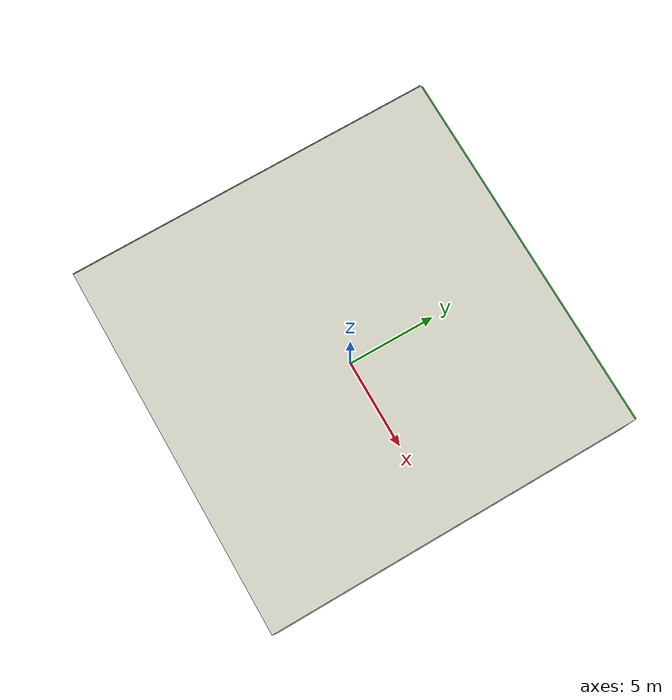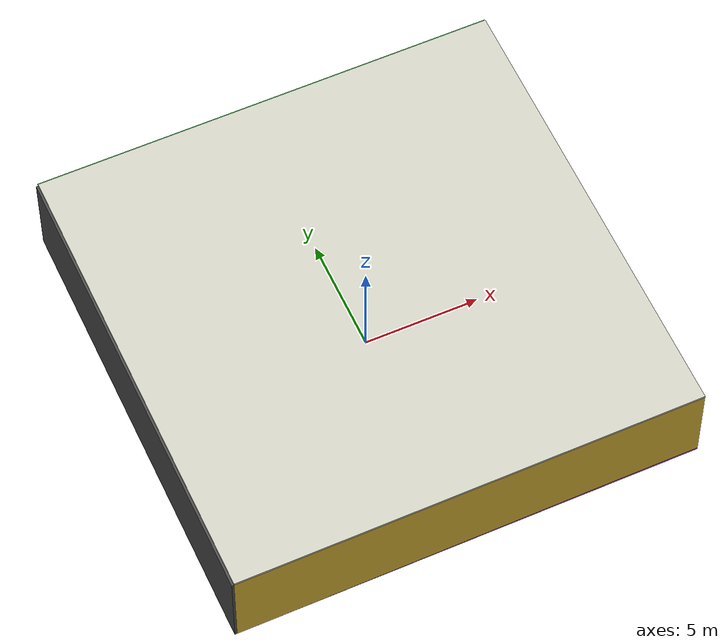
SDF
<sdf version="1.4">
 <world name="default">
  <physics type="ode">
   <max_step_size>0.001</max_step_size>
   <real_time_factor>1</real_time_factor>
   <real_time_update_rate>1000</real_time_update_rate>
   <gravity>0 0 -9.8</gravity>
  </physics>
  <scene><ambient>0.4 0.4 0.4 1</ambient><background>0.7 0.7 0.7 1</background><shadows>1</shadows></scene>
  <model name="Surrounding">
   <static>1</static>
   <link name="Ceiling">
    <collision name="Ceiling_Collision"><geometry><box><size>20 20 0.1</size></box></geometry></collision>
    <visual name="Ceiling_Visual">
     <geometry><box><size>20 20 0.1</size></box></geometry>
     <material>
      <script><uri>file://media/materials/scripts/gazebo.material</uri><name>Gazebo/PaintedWall</name></script>
     </material>
    </visual>
    <pose>0 0 4.05 0 0 0</pose>
   </link>
   <link name="Wall_South">
    <collision name="Wall_South_Collision">
     <geometry><box><size>20 0 4</size></box></geometry>
     <pose>0 0 2 0 -0 0</pose>
    </collision>
    <visual name="Wall_South_Visual">
     <pose>0 0 2 0 -0 0</pose>
     <geometry><box><size>20 0 4</size></box></geometry>
     <material>
      <script><uri>file://media/materials/scripts/gazebo.material</uri><name>Gazebo/Gold</name></script>
     </material>
    </visual>
    <velocity_decay><linear>0</linear><angular>0</angular></velocity_decay>
    <pose>0 -10 0 0 -0 0</pose>
   </link>
   <link name="Wall_East">
    <collision name="Wall_21_Collision">
     <geometry><box><size>20 0 4</size></box></geometry>
     <pose>0 0 2 0 -0 0</pose>
    </collision>
    <visual name="Wall_21_Visual">
     <pose>0 0 2 0 -0 0</pose>
     <geometry><box><size>20 0 4</size></box></geometry>
     <material>
      <script><uri>file://media/materials/scripts/gazebo.material</uri><name>Gazebo/PaintedWall</name></script>
     </material>
    </visual>
    <velocity_decay><linear>0</linear><angular>0</angular></velocity_decay>
    <pose>10 0 0 0 -0 1.5708</pose>
   </link>
   <link name="Wall_North">
    <collision name="Wall_22_Collision">
     <geometry><box><size>20 0.2 4</size></box></geometry>
     <pose>0 0 2 0 -0 0</pose>
    </collision>
    <visual name="Wall_22_Visual">
     <pose>0 0 2 0 -0 0</pose>
     <geometry><box><size>20 0.2 4</size></box></geometry>
     <material>
      <script><uri>file://media/materials/scripts/gazebo.material</uri><name>Gazebo/GreenGlow</name></script>
     </material>
    </visual>
    <velocity_decay><linear>0</linear><angular>0</angular></velocity_decay>
    <pose>0 10 0 0 -0 0</pose>
   </link>
   <link name="Wall_West">
    <collision name="Wall_23_Collision">
     <geometry><box><size>20 0.2 4</size></box></geometry>
     <pose>0 0 2 0 -0 0</pose>
    </collision>
    <visual name="Wall_23_Visual">
     <pose>0 0 2 0 -0 0</pose>
     <geometry><box><size>20 0.2 4</size></box></geometry>
     <material>
      <script><uri>file://media/materials/scripts/gazebo.material</uri><name>Gazebo/DarkGrey</name></script>
     </material>
    </visual>
    <velocity_decay><linear>0</linear><angular>0</angular></velocity_decay>
    <pose>-10 0 0 0 0 -1.5708</pose>
   </link>
   <link name="Ground_link">
    <collision name="collision">
     <pose>0 0 .05 0 -0 0</pose>
     <geometry><box><size>20 20 0.1</size></box></geometry>
    </collision>
    <visual name="visual">
     <pose>0 0 .05 0 -0 0</pose>
     <geometry><box><size>20 20 0.1</size></box></geometry>
     <material>
      <script><uri>file://media/materials/scripts/gazebo.material</uri><name>Gazebo/PurpleGlow</name></script>
     </material>
    </visual>
   </link>
   <static>1</static>
  </model>
  <spherical_coordinates>
   <surface_model>EARTH_WGS84</surface_model>
   <latitude_deg>0</latitude_deg>
   <longitude_deg>0</longitude_deg>
   <elevation>0</elevation>
   <heading_deg>0</heading_deg>
  </spherical_coordinates>
  <light name="lightball_0" type="diffuse">
   <diffuse>0.8 0.8 0.8 1</diffuse>
   <specular>0.2 0.2 0.2 1</specular>
   <attenuation>
    <range>100</range>
    <constant>0.7</constant>
    <linear>0.01</linear>
    <quadratic>0.001</quadratic>
   </attenuation>
   <direction>-0.5 0.1 -0.9</direction>
   <pose>0.357837489816 -2.11642434003 2.67494219847 0 0 0</pose>
  </light>
  <light name="lightball_1" type="diffuse">
   <diffuse>0.8 0.8 0.8 1</diffuse>
   <specular>0.2 0.2 0.2 1</specular>
   <attenuation>
    <range>100</range>
    <constant>0.7</constant>
    <linear>0.01</linear>
    <quadratic>0.001</quadratic>
   </attenuation>
   <direction>-0.5 0.1 -0.9</direction>
   <pose>8.31617219232 6.36122391131 0.578859901867 0 0 0</pose>
  </light>
  <light name="lightball_2" type="diffuse">
   <diffuse>0.8 0.8 0.8 1</diffuse>
   <specular>0.2 0.2 0.2 1</specular>
   <attenuation>
    <range>100</range>
    <constant>0.7</constant>
    <linear>0.01</linear>
    <quadratic>0.001</quadratic>
   </attenuation>
   <direction>-0.5 0.1 -0.9</direction>
   <pose>-0.710095080713 7.48584828983 3.32867471292 0 0 0</pose>
  </light>
  <light name="lightball_3" type="diffuse">
   <diffuse>0.8 0.8 0.8 1</diffuse>
   <specular>0.2 0.2 0.2 1</specular>
   <attenuation>
    <range>100</range>
    <constant>0.7</constant>
    <linear>0.01</linear>
    <quadratic>0.001</quadratic>
   </attenuation>
   <direction>-0.5 0.1 -0.9</direction>
   <pose>1.14833340929 -6.95696201819 3.0425506698 0 0 0</pose>
  </light>
  <light name="lightball_4" type="diffuse">
   <diffuse>0.8 0.8 0.8 1</diffuse>
   <specular>0.2 0.2 0.2 1</specular>
   <attenuation>
    <range>100</range>
    <constant>0.7</constant>
    <linear>0.01</linear>
    <quadratic>0.001</quadratic>
   </attenuation>
   <direction>-0.5 0.1 -0.9</direction>
   <pose>6.05718578117 -3.40751895614 3.67638386038 0 0 0</pose>
  </light>
  <light name="lightball_5" type="diffuse">
   <diffuse>0.8 0.8 0.8 1</diffuse>
   <specular>0.2 0.2 0.2 1</specular>
   <attenuation>
    <range>100</range>
    <constant>0.7</constant>
    <linear>0.01</linear>
    <quadratic>0.001</quadratic>
   </attenuation>
   <direction>-0.5 0.1 -0.9</direction>
   <pose>-2.51851436052 -5.26855887114 3.58887719028 0 0 0</pose>
  </light>
  <light name="lightball_6" type="diffuse">
   <diffuse>0.8 0.8 0.8 1</diffuse>
   <specular>0.2 0.2 0.2 1</specular>
   <attenuation>
    <range>100</range>
    <constant>0.7</constant>
    <linear>0.01</linear>
    <quadratic>0.001</quadratic>
   </attenuation>
   <direction>-0.5 0.1 -0.9</direction>
   <pose>-8.13196139724 -6.95451072544 1.88353863517 0 0 0</pose>
  </light>
  <light name="lightball_7" type="diffuse">
   <diffuse>0.8 0.8 0.8 1</diffuse>
   <specular>0.2 0.2 0.2 1</specular>
   <attenuation>
    <range>100</range>
    <constant>0.7</constant>
    <linear>0.01</linear>
    <quadratic>0.001</quadratic>
   </attenuation>
   <direction>-0.5 0.1 -0.9</direction>
   <pose>4.37104552833 8.96252017573 1.63363517528 0 0 0</pose>
  </light>
  <light name="lightball_8" type="diffuse">
   <diffuse>0.8 0.8 0.8 1</diffuse>
   <specular>0.2 0.2 0.2 1</specular>
   <attenuation>
    <range>100</range>
    <constant>0.7</constant>
    <linear>0.01</linear>
    <quadratic>0.001</quadratic>
   </attenuation>
   <direction>-0.5 0.1 -0.9</direction>
   <pose>4.64306891442 -4.19305702584 2.83341622013 0 0 0</pose>
  </light>
  <light name="lightball_9" type="diffuse">
   <diffuse>0.8 0.8 0.8 1</diffuse>
   <specular>0.2 0.2 0.2 1</specular>
   <attenuation>
    <range>100</range>
    <constant>0.7</constant>
    <linear>0.01</linear>
    <quadratic>0.001</quadratic>
   </attenuation>
   <direction>-0.5 0.1 -0.9</direction>
   <pose>4.96903686105 -3.07172721331 1.47178866211 0 0 0</pose>
  </light>
  <light name="lightball_10" type="diffuse">
   <diffuse>0.8 0.8 0.8 1</diffuse>
   <specular>0.2 0.2 0.2 1</specular>
   <attenuation>
    <range>100</range>
    <constant>0.7</constant>
    <linear>0.01</linear>
    <quadratic>0.001</quadratic>
   </attenuation>
   <direction>-0.5 0.1 -0.9</direction>
   <pose>-5.66018681656 -6.7342143355 0.796590662544 0 0 0</pose>
  </light>
  <light name="lightball_11" type="diffuse">
   <diffuse>0.8 0.8 0.8 1</diffuse>
   <specular>0.2 0.2 0.2 1</specular>
   <attenuation>
    <range>100</range>
    <constant>0.7</constant>
    <linear>0.01</linear>
    <quadratic>0.001</quadratic>
   </attenuation>
   <direction>-0.5 0.1 -0.9</direction>
   <pose>-2.94771648944 -6.48518712507 2.72028326242 0 0 0</pose>
  </light>
  <include>
   <uri>model://construction_cone</uri>
   <pose>-7.83393456897 -7.49591299057 0 0 0 1.17611525</pose>
  </include>
  <include><uri>model://table</uri><pose>-8.24565115351 7.0598294162 0 0 0 1.3902895596</pose></include>
  <include>
   <uri>model://robocup_3Dsim_goal</uri>
   <pose>-1.88195091868 7.4583051843 0 0 0 2.49483123925</pose>
  </include>
  <include><uri>model://cabinet</uri><pose>1.53087133627 -1.09087147483 0 0 0 0.922570683559</pose></include>
  <include><uri>model://cabinet</uri><pose>4.12712086868 -1.19891060325 0 0 0 0.0822621081813</pose></include>
  <include><uri>model://cabinet</uri><pose>7.25196924544 -4.8547998933 0 0 0 1.62983298884</pose></include>
 </world>
</sdf>

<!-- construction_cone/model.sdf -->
<sdf version="1.5">
  <model name="Construction Cone">
    <link name="link">
      <collision name="collision">
        <geometry>
          <mesh>
            <scale>10 10 10</scale>
            <uri>file://isr-testbed/construction_cone/meshes/construction_cone.dae</uri>
          </mesh>
        </geometry>
      </collision>
      <visual name="visual">
        <geometry>
          <mesh>
            <scale>10 10 10</scale>
            <uri>file://isr-testbed/construction_cone/meshes/construction_cone.dae</uri>
          </mesh>
        </geometry>
      </visual>
    </link>
  </model>
</sdf>

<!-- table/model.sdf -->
<sdf version="1.5">
  <model name="table">
    <static>true</static>
    <link name="link">
      <collision name="surface">
        <pose>0 0 1.0 0 0 0</pose>
        <geometry>
          <box>
            <size>1.5 0.8 0.03</size>
          </box>
        </geometry>
        <surface>
          <friction>
            <ode>
              <mu>0.6</mu>
              <mu2>0.6</mu2>
            </ode>
          </friction>
        </surface>
      </collision>
      <visual name="visual1">
        <pose>0 0 1.0 0 0 0</pose>
        <geometry>
          <box>
            <size>1.5 0.8 0.03</size>
          </box>
        </geometry>
        <material>
          <script>
            <uri>model://media/materials/scripts/gazebo.material</uri>
            <name>Gazebo/Wood</name>
          </script>
        </material>
      </visual>
      <collision name="front_left_leg">
        <pose>0.68 0.38 0.5 0 0 0</pose>
        <geometry>
          <cylinder>
            <radius>0.02</radius>
            <length>1.0</length>
          </cylinder>
        </geometry>
      </collision>
      <visual name="front_left_leg">
        <pose>0.68 0.38 0.5 0 0 0</pose>
        <geometry>
          <cylinder>
            <radius>0.02</radius>
            <length>1.0</length>
          </cylinder>
        </geometry>
        <material>
          <script>
            <uri>model://media/materials/scripts/gazebo.material</uri>
            <name>Gazebo/Grey</name>
          </script>
        </material>
      </visual>
      <collision name="front_right_leg">
        <pose>0.68 -0.38 0.5 0 0 0</pose>
        <geometry>
          <cylinder>
            <radius>0.02</radius>
            <length>1.0</length>
          </cylinder>
        </geometry>
      </collision>
      <visual name="front_right_leg">
        <pose>0.68 -0.38 0.5 0 0 0</pose>
        <geometry>
          <cylinder>
            <radius>0.02</radius>
            <length>1.0</length>
          </cylinder>
        </geometry>
        <material>
          <script>
            <uri>model://media/materials/scripts/gazebo.material</uri>
            <name>Gazebo/Grey</name>
          </script>
        </material>
      </visual>
      <collision name="back_right_leg">
        <pose>-0.68 -0.38 0.5 0 0 0</pose>
        <geometry>
          <cylinder>
            <radius>0.02</radius>
            <length>1.0</length>
          </cylinder>
        </geometry>
      </collision>
      <visual name="back_right_leg">
        <pose>-0.68 -0.38 0.5 0 0 0</pose>
        <geometry>
          <cylinder>
            <radius>0.02</radius>
            <length>1.0</length>
          </cylinder>
        </geometry>
        <material>
          <script>
            <uri>model://media/materials/scripts/gazebo.material</uri>
            <name>Gazebo/Grey</name>
          </script>
        </material>
      </visual>
      <collision name="back_left_leg">
        <pose>-0.68 0.38 0.5 0 0 0</pose>
        <geometry>
          <cylinder>
            <radius>0.02</radius>
            <length>1.0</length>
          </cylinder>
        </geometry>
      </collision>
      <visual name="back_left_leg">
        <pose>-0.68 0.38 0.5 0 0 0</pose>
        <geometry>
          <cylinder>
            <radius>0.02</radius>
            <length>1.0</length>
          </cylinder>
        </geometry>
        <material>
          <script>
            <uri>model://media/materials/scripts/gazebo.material</uri>
            <name>Gazebo/Grey</name>
          </script>
        </material>
      </visual>
    </link>
  </model>
</sdf>

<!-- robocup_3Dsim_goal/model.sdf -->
<sdf version="1.5">
  <model name="robocup_3d_goal">
    <static>true</static>
    <link name="left_post">
      <pose>0 1.05 0.45 0 0 0</pose>
      <collision name="collision">
        <geometry>
          <cylinder>
            <radius>0.05</radius>
            <length>0.9</length>
          </cylinder>
        </geometry>
      </collision>
      <visual name="visual">
        <geometry>
          <cylinder>
            <radius>0.05</radius>
            <length>0.9</length>
          </cylinder>
        </geometry>
        <material>
          <script>
            <uri>file://media/materials/scripts/gazebo.material</uri>
            <name>Gazebo/ZincYellow</name>
          </script>
        </material>
      </visual>
    </link>
    <link name="left_support_horiz_lower">
      <pose>0.30 1.05 0.01 0 0 0</pose>
      <collision name="collision">
        <geometry>
          <box>
            <size>0.50 0.02 0.02</size>
          </box>
        </geometry>
      </collision>
      <visual name="visual">
        <geometry>
          <box>
            <size>0.50 0.02 0.02</size>
          </box>
        </geometry>
        <material>
          <script>
            <uri>file://media/materials/scripts/gazebo.material</uri>
            <name>Gazebo/White</name>
          </script>
        </material>
      </visual>
    </link>
    <link name="left_support_horiz_upper">
      <pose>0.30 1.05 0.79 0 0 0</pose>
      <collision name="collision">
        <geometry>
          <box>
            <size>0.50 0.02 0.02</size>
          </box>
        </geometry>
      </collision>
      <visual name="visual">
        <geometry>
          <box>
            <size>0.50 0.02 0.02</size>
          </box>
        </geometry>
        <material>
          <script>
            <uri>file://media/materials/scripts/gazebo.material</uri>
            <name>Gazebo/White</name>
          </script>
        </material>
      </visual>
    </link>
    <link name="left_support_vertical">
      <pose>0.56 1.05 0.4 0 1.5708 0</pose>
      <collision name="collision">
        <geometry>
          <box>
            <size>0.80 0.02 0.02</size>
          </box>
        </geometry>
      </collision>
      <visual name="visual">
        <geometry>
          <box>
            <size>0.80 0.02 0.02</size>
          </box>
        </geometry>
        <material>
          <script>
            <uri>file://media/materials/scripts/gazebo.material</uri>
            <name>Gazebo/White</name>
          </script>
        </material>
      </visual>
    </link>
    <link name="right_support_horiz_lower">
      <pose>0.30 -1.05 0.01 0 0 0</pose>
      <collision name="collision">
        <geometry>
          <box>
            <size>0.50 0.02 0.02</size>
          </box>
        </geometry>
      </collision>
      <visual name="visual">
        <geometry>
          <box>
            <size>0.50 0.02 0.02</size>
          </box>
        </geometry>
        <material>
          <script>
            <uri>file://media/materials/scripts/gazebo.material</uri>
            <name>Gazebo/White</name>
          </script>
        </material>
      </visual>
    </link>
    <link name="right_support_horiz_upper">
      <pose>0.30 -1.05 0.79 0 0 0</pose>
      <collision name="collision">
        <geometry>
          <box>
            <size>0.50 0.02 0.02</size>
          </box>
        </geometry>
      </collision>
      <visual name="visual">
        <geometry>
          <box>
            <size>0.50 0.02 0.02</size>
          </box>
        </geometry>
        <material>
          <script>
            <uri>file://media/materials/scripts/gazebo.material</uri>
            <name>Gazebo/White</name>
          </script>
        </material>
      </visual>
    </link>
    <link name="right_support_vertical">
      <pose>0.56 -1.05 0.4 0 1.5708 0</pose>
      <collision name="collision">
        <geometry>
          <box>
            <size>0.80 0.02 0.02</size>
          </box>
        </geometry>
      </collision>
      <visual name="visual">
        <geometry>
          <box>
            <size>0.80 0.02 0.02</size>
          </box>
        </geometry>
        <material>
          <script>
            <uri>file://media/materials/scripts/gazebo.material</uri>
            <name>Gazebo/White</name>
          </script>
        </material>
      </visual>
    </link>
    <link name="center_support_horiz_lower">
      <pose>0.56 0 0.01 0 1.5708 0</pose>
      <collision name="collision">
        <geometry>
          <box>
            <size>0.02 2.08 0.02</size>
          </box>
        </geometry>
      </collision>
      <visual name="visual">
        <geometry>
          <box>
            <size>0.02 2.08 0.02</size>
          </box>
        </geometry>
        <material>
          <script>
            <uri>file://media/materials/scripts/gazebo.material</uri>
            <name>Gazebo/White</name>
          </script>
        </material>
      </visual>
    </link>
    <link name="center_support_horiz_upper">
      <pose>0.56 0 0.79 0 1.5708 0</pose>
      <collision name="collision">
        <geometry>
          <box>
            <size>0.02 2.08 0.02</size>
          </box>
        </geometry>
      </collision>
      <visual name="visual">
        <geometry>
          <box>
            <size>0.02 2.08 0.02</size>
          </box>
        </geometry>
        <material>
          <script>
            <uri>file://media/materials/scripts/gazebo.material</uri>
            <name>Gazebo/White</name>
          </script>
        </material>
      </visual>
    </link>
    <link name="right_post">
      <pose>0 -1.05 0.45 0 0 0</pose>
      <collision name="collision">
        <geometry>
          <cylinder>
            <radius>0.05</radius>
            <length>0.9</length>
          </cylinder>
        </geometry>
      </collision>
      <visual name="visual">
        <geometry>
          <cylinder>
            <radius>0.05</radius>
            <length>0.9</length>
          </cylinder>
        </geometry>
        <material>
          <script>
            <uri>file://media/materials/scripts/gazebo.material</uri>
            <name>Gazebo/ZincYellow</name>
          </script>
        </material>
      </visual>
    </link>
    <link name="crossbar">
      <pose>0 0 0.85 1.57 1.57 0</pose>
      <collision name="collision">
        <geometry>
          <cylinder>
            <radius>0.05</radius>
            <length>2.0</length>
          </cylinder>
        </geometry>
      </collision>
      <visual name="visual">
        <geometry>
          <cylinder>
            <radius>0.05</radius>
            <length>2.0</length>
          </cylinder>
        </geometry>
        <material>
          <script>
            <uri>file://media/materials/scripts/gazebo.material</uri>
            <name>Gazebo/ZincYellow</name>
          </script>
        </material>
      </visual>
    </link>
    <link name="center_net">
      <pose>0.56 0 0.40 0 0 0</pose>
      <collision name="collision">
        <geometry>
          <box>
            <size>0.01 2.1 0.80</size>
          </box>
        </geometry>
      </collision>
      <visual name="visual">
        <geometry>
          <box>
            <size>0.01 2.1 0.80</size>
          </box>
        </geometry>
        <material>
          <script>
            <uri>model://../model_source/models/robocup09_spl_field/materials/scripts/</uri>
            <uri>model://../model_source/models/robocup09_spl_field/materials/textures/</uri>
            <name>RoboCup/Net</name>
          </script>
        </material>
      </visual>
    </link>
    <link name="left_net">
      <pose>0.30 1.05 0.40 0 0 0</pose>
      <collision name="collision">
        <geometry>
          <box>
            <size>0.50 0.01 0.76</size>
          </box>
        </geometry>
      </collision>
      <visual name="visual">
        <geometry>
          <box>
            <size>0.50 0.01 0.76</size>
          </box>
        </geometry>
        <material>
          <script>
            <uri>model://../model_source/models/robocup09_spl_field/materials/scripts/</uri>
            <uri>model://../model_source/models/robocup09_spl_field/materials/textures/</uri>
            <name>RoboCup/Net</name>
          </script>
        </material>
      </visual>
    </link>
    <link name="right_net">
      <pose>0.30 -1.05 0.40 0 0 0</pose>
      <collision name="collision">
        <geometry>
          <box>
            <size>0.50 0.01 0.76</size>
          </box>
        </geometry>
      </collision>
      <visual name="visual">
        <geometry>
          <box>
            <size>0.50 0.01 0.76</size>
          </box>
        </geometry>
        <material>
          <script>
            <uri>model://../model_source/models/robocup09_spl_field/materials/scripts/</uri>
            <uri>model://../model_source/models/robocup09_spl_field/materials/textures/</uri>
            <name>RoboCup/Net</name>
          </script>
        </material>
      </visual>
    </link>
  </model>
</sdf>

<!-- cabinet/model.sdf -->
<sdf version="1.5">
  <model name="cabinet">
    <static>true</static>
    <link name="cabinet_bottom_plate">
      <inertial>
        <pose>0 0 -1 0 0 0</pose>
        <inertia>
          <ixx>2.050000</ixx>
          <ixy>0</ixy>
          <ixz>0</ixz>
          <iyy>2.050000</iyy>
          <iyz>0</iyz>
          <izz>2.050000</izz>
        </inertia>
        <mass>25.000000</mass>
      </inertial>
      <collision name="cabinet_bottom_plate_geom">
        <pose>0 0 0.010000 0 0 0</pose>
        <geometry>
          <box>
            <size>0.450000 0.450000 0.020000</size>
          </box>
        </geometry>
      </collision>
      <visual name="cabinet_bottom_plate_geom_visual">
        <pose>0 0 0.010000 0 0 0</pose>
        <geometry>
          <box>
            <size>0.450000 0.450000 0.020000</size>
          </box>
        </geometry>
        <material>
          <script>
            <uri>model://media/materials/scripts/gazebo.material</uri>
            <name>Gazebo/Wood</name>
          </script>
        </material>
      </visual>
      <collision name="cabinet_bottom_plate_geom_cabinet_back_plate">
        <pose>0.235000 0 0.510000 0 0 0</pose>
        <geometry>
          <box>
            <size>0.020000 0.450000 1.020000</size>
          </box>
        </geometry>
      </collision>
      <visual name="cabinet_bottom_plate_geom_cabinet_back_plate_visual">
        <pose>0.235000 0 0.510000 0 0 0</pose>
        <geometry>
          <box>
            <size>0.020000 0.450000 1.020000</size>
          </box>
        </geometry>
        <material>
          <script>
            <uri>model://media/materials/scripts/gazebo.material</uri>
            <name>Gazebo/Wood</name>
          </script>
        </material>
      </visual>
      <collision name="cabinet_bottom_plate_geom_cabinet_left_plate">
        <pose>0 0.235000 0.510000 0 0 0</pose>
        <geometry>
          <box>
            <size>0.450000 0.020000 1.020000</size>
          </box>
        </geometry>
      </collision>
      <visual name="cabinet_bottom_plate_geom_cabinet_left_plate_visual">
        <pose>0 0.235000 0.510000 0 0 0</pose>
        <geometry>
          <box>
            <size>0.450000 0.020000 1.020000</size>
          </box>
        </geometry>
        <material>
          <script>
            <uri>model://media/materials/scripts/gazebo.material</uri>
            <name>Gazebo/Wood</name>
          </script>
        </material>
      </visual>
      <collision name="cabinet_bottom_plate_geom_cabinet_middle_plate">
        <pose>0 0 0.510000 0 0 0</pose>
        <geometry>
          <box>
            <size>0.450000 0.450000 0.020000</size>
          </box>
        </geometry>
      </collision>
      <visual name="cabinet_bottom_plate_geom_cabinet_middle_plate_visual">
        <pose>0 0 0.510000 0 0 0</pose>
        <geometry>
          <box>
            <size>0.450000 0.450000 0.020000</size>
          </box>
        </geometry>
        <material>
          <script>
            <uri>model://media/materials/scripts/gazebo.material</uri>
            <name>Gazebo/Wood</name>
          </script>
        </material>
      </visual>
      <collision name="cabinet_bottom_plate_geom_cabinet_right_plate">
        <pose>0 -0.235000 0.510000 0 0 0</pose>
        <geometry>
          <box>
            <size>0.450000 0.020000 1.020000</size>
          </box>
        </geometry>
      </collision>
      <visual name="cabinet_bottom_plate_geom_cabinet_right_plate_visual">
        <pose>0 -0.235000 0.510000 0 0 0</pose>
        <geometry>
          <box>
            <size>0.450000 0.020000 1.020000</size>
          </box>
        </geometry>
        <material>
          <script>
            <uri>model://media/materials/scripts/gazebo.material</uri>
            <name>Gazebo/Wood</name>
          </script>
        </material>
      </visual>
      <collision name="cabinet_bottom_plate_geom_cabinet_top_plate">
        <pose>0 0 1.010000 0 0 0</pose>
        <geometry>
          <box>
            <size>0.450000 0.450000 0.020000</size>
          </box>
        </geometry>
      </collision>
      <visual name="cabinet_bottom_plate_geom_cabinet_top_plate_visual">
        <pose>0 0 1.010000 0 0 0</pose>
        <geometry>
          <box>
            <size>0.450000 0.450000 0.020000</size>
          </box>
        </geometry>
        <material>
          <script>
            <uri>model://media/materials/scripts/gazebo.material</uri>
            <name>Gazebo/Wood</name>
          </script>
        </material>
      </visual>
    </link>
  </model>
</sdf>
